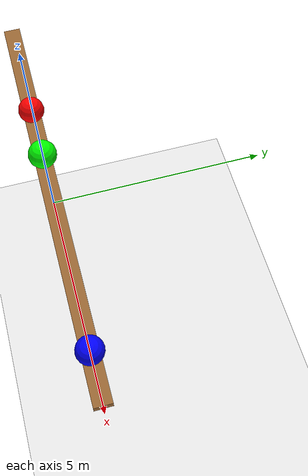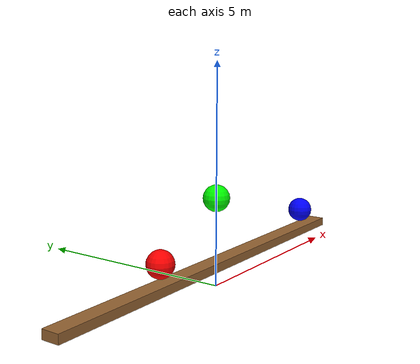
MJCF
<mujoco>
  <option gravity="0 0 -9.81"/>
  <worldbody>
    <body name="ground" pos="0 0 -10">
      <geom type="plane" size="30 30 0.1" rgba="0.9 0.9 0.9 1"/>
    </body>
    <body name="plank" pos="0 0 0.5">
      <geom type="box" size="5 0.2 0.1" density="0.5" rgba="0.6 0.4 0.2 1"/>
      <joint name="plank_joint" type="hinge" axis="0 1 0"/>
    </body>
    <body name="mass_left" pos="-2 0 1">
      <geom type="sphere" size="0.3" density="3" rgba="1 0 0 1"/>
    </body>
    <body name="mass_right" pos="4 0 1">
      <geom type="sphere" size="0.3" density="1" rgba="0 0 1 1"/>
    </body>
    <body name="mass_to_place" pos="0 0 2">
      <geom type="sphere" size="0.3" density="2" rgba="0 1 0 1"/>
    </body>
  </worldbody>
</mujoco>
